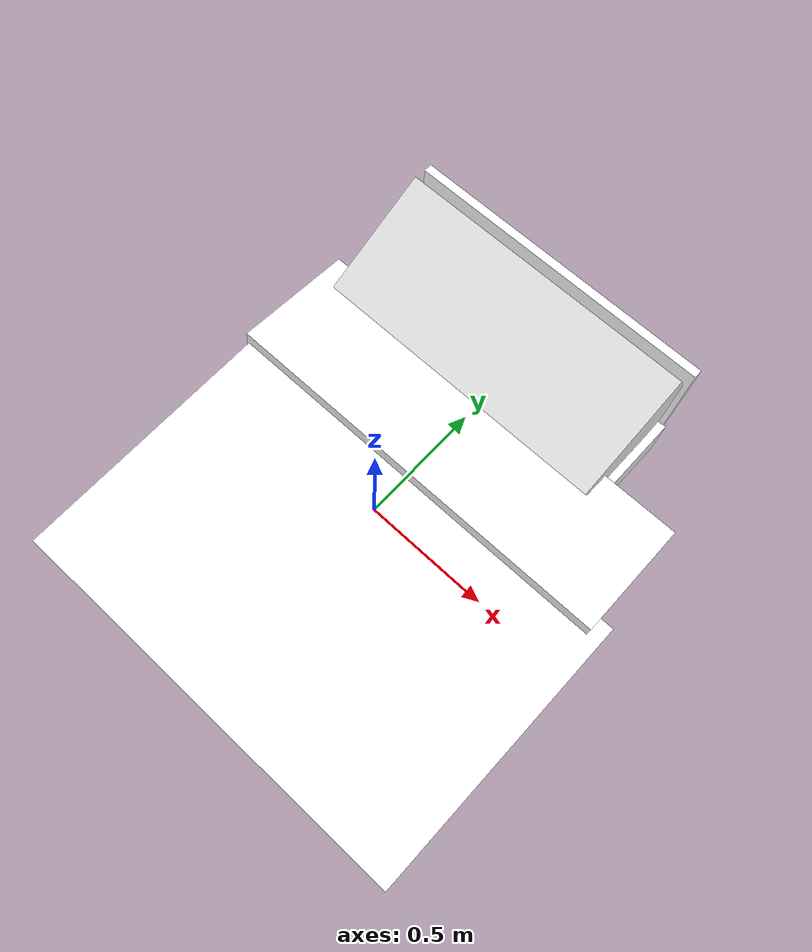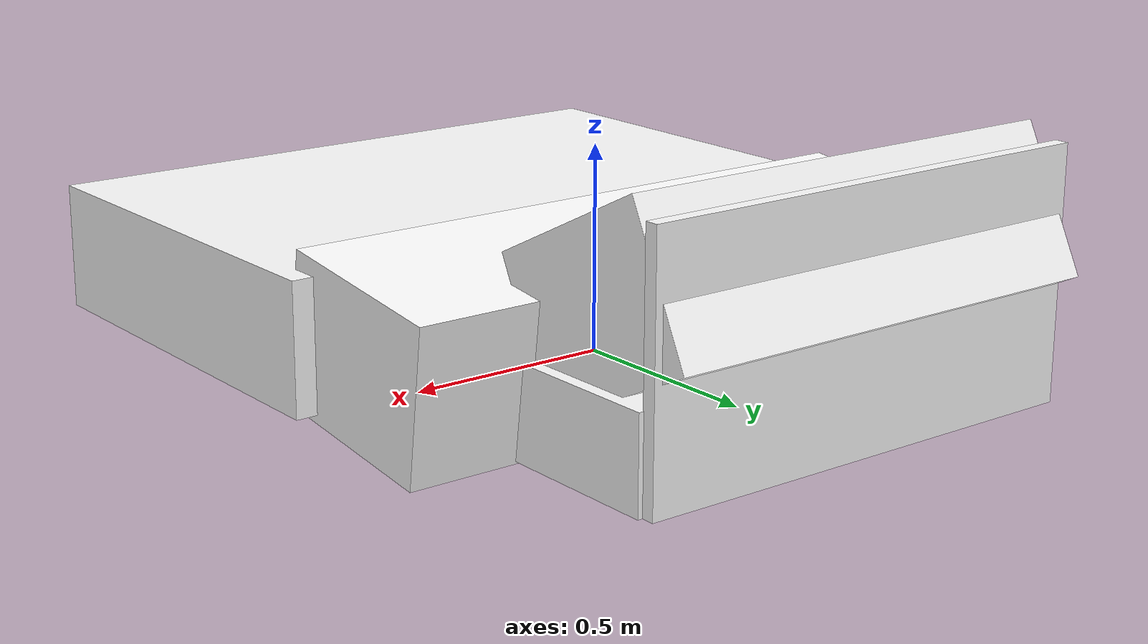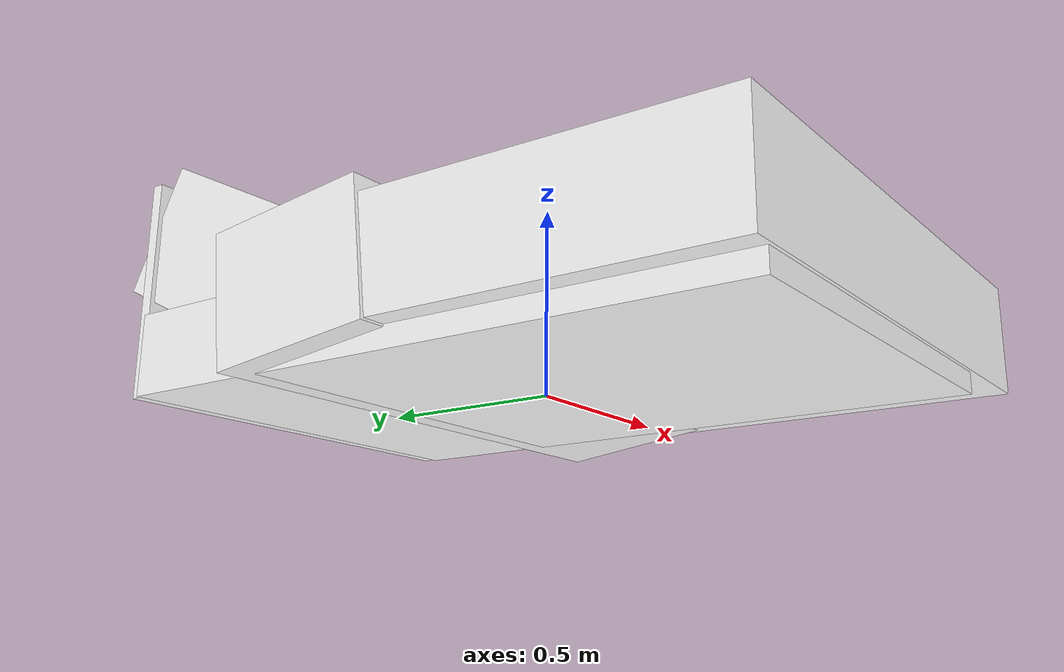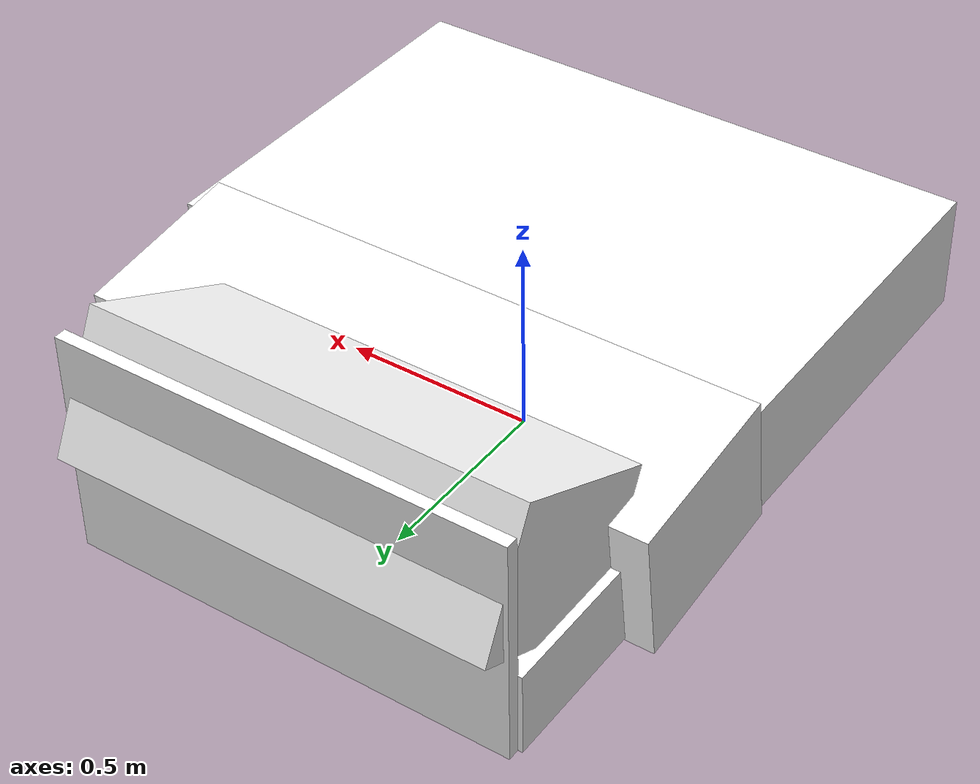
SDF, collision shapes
<?xml version="1.0" encoding="UTF-8"?>
<sdf version="1.8">
    <model name="Bed">
        <static>true</static>
        <link name="base_link">
            <visual name="visual">
                <geometry>
                    <mesh>
                        <uri>meshes/bed.dae</uri>
                        <scale>0.5 0.5 0.5</scale>
                    </mesh>
                </geometry>
                <material>
                    <diffuse>1.0 1.0 1.0 1.0</diffuse>
                    <specular>1.0 1.0 1.0 1.0</specular>
                    <pbr>
                        <metal>
                            <albedo_map>materials/textures/Bed_Albedo.png</albedo_map>
                            <normal_map>materials/textures/Bed_Normal.png</normal_map>
                            <roughness_map>materials/textures/Bed_Roughness.png</roughness_map>
                        </metal>
                    </pbr>
                </material>
            </visual>
            <collision name="Box001">
                <pose>0.0 0.877252 0.29161 0.0 0.0 -1.5708</pose>
                <geometry>
                    <box>
                        <size>0.031908 1.142505 0.58322</size>
                    </box>
                </geometry>
            </collision>
            <collision name="Box002">
                <pose>0.0 -0.019858 0.107896 0.0 0.0 -1.5708</pose>
                <geometry>
                    <box>
                        <size>1.766445 1.165357 0.215791</size>
                    </box>
                </geometry>
            </collision>
            <collision name="Box003">
                <pose>-0.003008 0.672908 0.360808 1.5708 0.456787 -1.5708</pose>
                <geometry>
                    <box>
                        <size>0.45546 0.353708 1.11192</size>
                    </box>
                </geometry>
            </collision>
            <collision name="Box004">
                <pose>0.092609 0.270127 0.198145 1.5708 -0.125019 -1.5708</pose>
                <geometry>
                    <box>
                        <size>0.45546 0.353708 1.496093</size>
                    </box>
                </geometry>
            </collision>
            <collision name="Box005">
                <pose>0.122824 -0.390876 0.207122 0.0 0.0 -1.5708</pose>
                <geometry>
                    <box>
                        <size>1.0422 1.53633 0.299777</size>
                    </box>
                </geometry>
            </collision>
        </link>
    </model>
</sdf>
